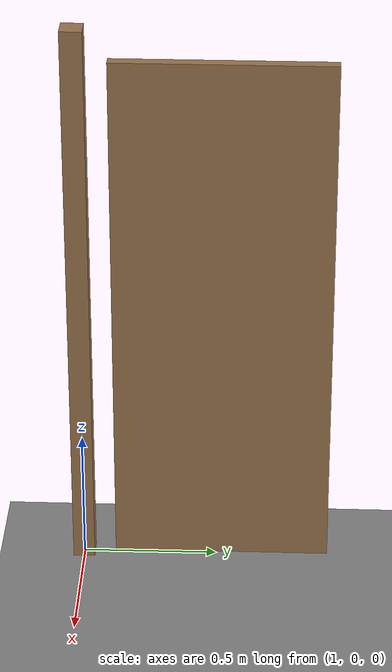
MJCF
<mujoco model="a_door_swings_shut_and_stays_shut">
  <compiler angle="radian"/>
  <option timestep="0.002"/>
  <worldbody>
    <geom name="floor" type="plane" size="6 6 0.1" friction="0.8 0.005 0.002"/>
    <body name="frame">
      <geom name="frame" type="box" pos="1 0 1.07" size="0.04 0.04 1.07" rgba="0.6 0.45 0.3 1"/>
    </body>
    <body name="door" pos="1 0.12 1.02">
      <joint name="hinge" type="hinge" pos="0 0 0" axis="0 0 1" limited="true" range="0 1.91986" stiffness="20" springref="-0.174533" damping="5"/>
      <geom name="door" type="box" pos="0 0.4 0" size="0.02 0.4 1" mass="15" rgba="0.6 0.45 0.3 1"/>
    </body>
  </worldbody>
  <keyframe>
    <key name="start" qpos="1.22173" qvel="0"/>
  </keyframe>
</mujoco>
